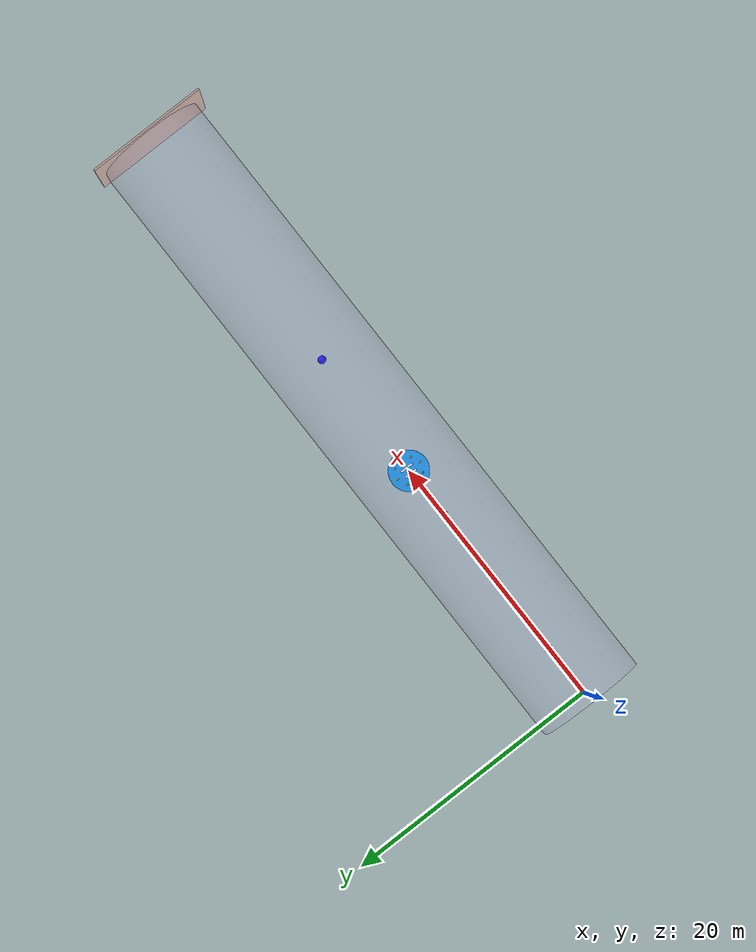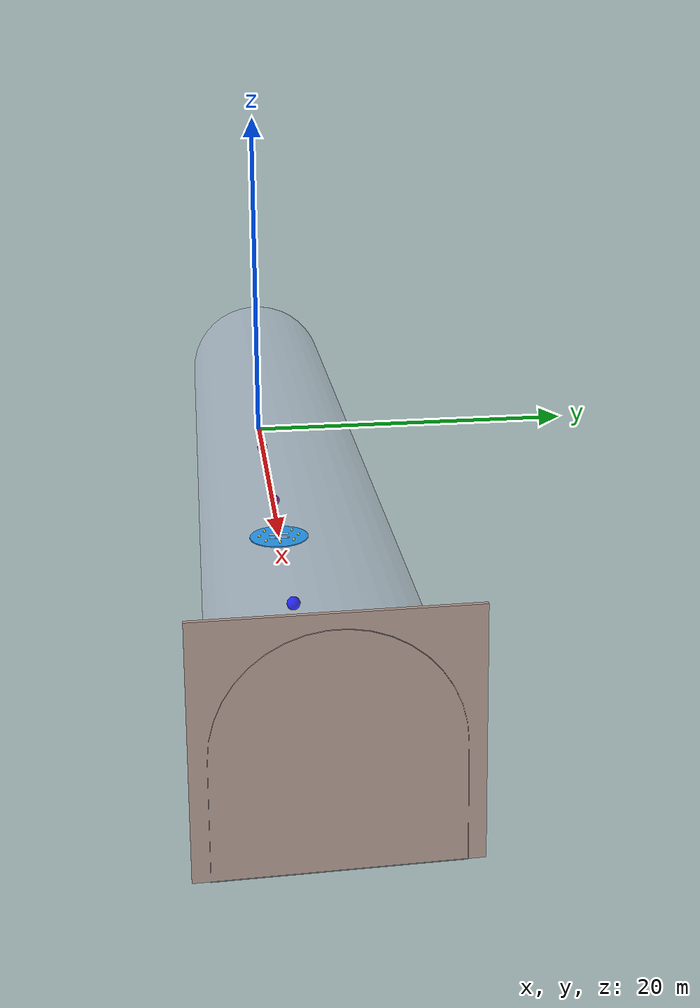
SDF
<sdf version="1.7">
 <world name="default">
  <light name="sun" type="directional">
   <pose>0 0 10 0 -0 0</pose>
   <diffuse>0.8 0.8 0.8 1</diffuse>
   <specular>0.2 0.2 0.2 1</specular>
   <attenuation>
    <range>1000</range>
    <constant>0.9</constant>
    <linear>0.01</linear>
    <quadratic>0.001</quadratic>
   </attenuation>
   <direction>-0.5 0.1 -0.9</direction>
   <spot><inner_angle>0</inner_angle><outer_angle>0</outer_angle><falloff>0</falloff></spot>
  </light>
  <gravity>0 0 -9.8</gravity>
  <magnetic_field>6e-06 2.3e-05 -4.2e-05</magnetic_field>
  <atmosphere type="adiabatic"/>
  <physics type="ode">
   <max_step_size>0.001</max_step_size>
   <real_time_factor>1</real_time_factor>
   <real_time_update_rate>1000</real_time_update_rate>
  </physics>
  <scene><ambient>0.4 0.4 0.4 1</ambient><background>0.7 0.7 0.7 1</background><shadows>1</shadows></scene>
  <spherical_coordinates>
   <surface_model>EARTH_WGS84</surface_model>
   <latitude_deg>0</latitude_deg>
   <longitude_deg>0</longitude_deg>
   <elevation>0</elevation>
   <heading_deg>0</heading_deg>
  </spherical_coordinates>
  <model name="tunnel_straight">
   <static>1</static>
   <link name="tunnel_straight">
    <collision name="collision">
     <geometry>
      <mesh><scale>1 1 1</scale><uri>model://tunnel_straight/meshes/tunnel_straight.dae</uri></mesh>
     </geometry>
    </collision>
    <visual name="visual">
     <geometry>
      <mesh><scale>1 1 1</scale><uri>model://tunnel_straight/meshes/tunnel_straight.dae</uri></mesh>
     </geometry>
     <material>
      <ambient>0.8 0.8 1 0.2</ambient>
      <diffuse>0.8 0.8 1 0.2</diffuse>
      <specular>0.9 0.9 0.9 0.2</specular>
     </material>
     <transparency>0.8</transparency>
    </visual>
   </link>
   <pose>-0.5 0 0 0 -0 0</pose>
  </model>
  <model name="tunnel_wall">
   <pose>41.9281 0 0 0 -0 0</pose>
   <link name="Wall_0">
    <collision name="Wall_0_Collision">
     <geometry><box><size>9.15 0.15 8.5</size></box></geometry>
     <pose>0 0 4.25 0 -0 0</pose>
    </collision>
    <visual name="Wall_0_Visual">
     <pose>0 0 4.25 0 -0 0</pose>
     <geometry><box><size>9.15 0.15 8.5</size></box></geometry>
     <material>
      <script><uri>file://media/materials/scripts/gazebo.material</uri><name>Gazebo/Grey</name></script>
      <ambient>0.760784 0.662745 0.627451 1</ambient>
     </material>
     <meta><layer>0</layer></meta>
    </visual>
    <pose>7.4625 0 0 0 -0 1.5708</pose>
   </link>
   <static>1</static>
  </model>
  <model name="helipad_marker">
   <static>true</static>
   <link name="helipad_link">
    <visual name="helipad_base">
     <geometry><cylinder><radius>1.5</radius><length>0.05</length></cylinder></geometry>
     <material><ambient>0 0.6 1 1</ambient><diffuse>0 0.6 1 1</diffuse></material>
     <pose>0 0 0.025 0 0 0</pose>
    </visual>
    <visual name="helipad_H1">
     <geometry><box><size>0.15 1.0 0.02</size></box></geometry>
     <material><ambient>1 1 1 1</ambient><diffuse>1 1 1 1</diffuse></material>
     <pose>-0.25 0 0.06 0 0 0</pose>
    </visual>
    <visual name="helipad_H2">
     <geometry><box><size>0.15 1.0 0.02</size></box></geometry>
     <material><ambient>1 1 1 1</ambient><diffuse>1 1 1 1</diffuse></material>
     <pose>0.25 0 0.06 0 0 0</pose>
    </visual>
    <visual name="helipad_H3">
     <geometry><box><size>0.55 0.15 0.02</size></box></geometry>
     <material><ambient>1 1 1 1</ambient><diffuse>1 1 1 1</diffuse></material>
     <pose>0 0 0.06 0 0 0</pose>
    </visual>
    <visual name="light_ball_0">
     <geometry><sphere><radius>0.07</radius></sphere></geometry>
     <material><ambient>1 1 0 1</ambient><diffuse>1 1 0 1</diffuse></material>
     <pose>1 0 0.1 0 0 0</pose>
    </visual>
    <visual name="light_ball_1">
     <geometry><sphere><radius>0.07</radius></sphere></geometry>
     <material><ambient>1 1 0 1</ambient><diffuse>1 1 0 1</diffuse></material>
     <pose>0.707 0.707 0.1 0 0 0</pose>
    </visual>
    <visual name="light_ball_2">
     <geometry><sphere><radius>0.07</radius></sphere></geometry>
     <material><ambient>1 1 0 1</ambient><diffuse>1 1 0 1</diffuse></material>
     <pose>0 1 0.1 0 0 0</pose>
    </visual>
    <visual name="light_ball_3">
     <geometry><sphere><radius>0.07</radius></sphere></geometry>
     <material><ambient>1 1 0 1</ambient><diffuse>1 1 0 1</diffuse></material>
     <pose>-0.707 0.707 0.1 0 0 0</pose>
    </visual>
    <visual name="light_ball_4">
     <geometry><sphere><radius>0.07</radius></sphere></geometry>
     <material><ambient>1 1 0 1</ambient><diffuse>1 1 0 1</diffuse></material>
     <pose>-1 0 0.1 0 0 0</pose>
    </visual>
    <visual name="light_ball_5">
     <geometry><sphere><radius>0.07</radius></sphere></geometry>
     <material><ambient>1 1 0 1</ambient><diffuse>1 1 0 1</diffuse></material>
     <pose>-0.707 -0.707 0.1 0 0 0</pose>
    </visual>
    <visual name="light_ball_6">
     <geometry><sphere><radius>0.07</radius></sphere></geometry>
     <material><ambient>1 1 0 1</ambient><diffuse>1 1 0 1</diffuse></material>
     <pose>0 -1 0.1 0 0 0</pose>
    </visual>
    <visual name="light_ball_7">
     <geometry><sphere><radius>0.07</radius></sphere></geometry>
     <material><ambient>1 1 0 1</ambient><diffuse>1 1 0 1</diffuse></material>
     <pose>0.707 -0.707 0.1 0 0 0</pose>
    </visual>
   </link>
   <pose>20 0 0 0 0 0</pose>
  </model>
  <model name="red_ball_only">
   <pose>4 0 0. 0 0 0</pose>
   <link name="link">
    <collision name="collision"><geometry><sphere><radius>0.3</radius></sphere></geometry></collision>
    <visual name="visual">
     <geometry><sphere><radius>0.3</radius></sphere></geometry>
     <material><ambient>1 0 0 1</ambient><diffuse>1 0 0 1</diffuse><specular>0.3 0.1 0.1 1</specular></material>
    </visual>
   </link>
   <plugin name="obstacle_motion" filename="libobstaclePathPlugin.so">
    <loop>0</loop>
    <velocity>0.5</velocity>
    <angular_velocity>0.8</angular_velocity>
    <path><waypoint>4.0 -1.5 1.0</waypoint><waypoint>4.0 1.5 1.0</waypoint></path>
   </plugin>
  </model>
  <model name="blue_ball">
   <pose>30 0 0.6 0 0 0</pose>
   <link name="link">
    <collision name="collision"><geometry><sphere><radius>0.3</radius></sphere></geometry></collision>
    <visual name="visual">
     <geometry><sphere><radius>0.3</radius></sphere></geometry>
     <material><ambient>0 0 1 1</ambient><diffuse>0 0 1 1</diffuse><specular>0.1 0.1 0.5 1</specular></material>
    </visual>
   </link>
   <plugin name="obstacle_motion" filename="libobstaclePathPlugin.so">
    <loop>0</loop>
    <velocity>0.5</velocity>
    <angular_velocity>0.8</angular_velocity>
    <path><waypoint>30.0 -1.5 1.0</waypoint><waypoint>30.0 1.5 1.0</waypoint></path>
   </plugin>
  </model>
  <model name="purple_ball">
   <pose>16 0 0.6 0 0 0</pose>
   <link name="link">
    <collision name="collision"><geometry><sphere><radius>0.3</radius></sphere></geometry></collision>
    <visual name="visual">
     <geometry><sphere><radius>0.3</radius></sphere></geometry>
     <material>
      <ambient>0.5 0 0.5 1</ambient>
      <diffuse>0.5 0 0.5 1</diffuse>
      <specular>0.3 0.1 0.4 1</specular>
     </material>
    </visual>
   </link>
   <plugin name="obstacle_motion" filename="libobstaclePathPlugin.so">
    <loop>0</loop>
    <velocity>0.5</velocity>
    <angular_velocity>0.8</angular_velocity>
    <path><waypoint>16.0 -1.5 1.0</waypoint><waypoint>16.0 1.5 1.0</waypoint></path>
   </plugin>
  </model>
 </world>
</sdf>
